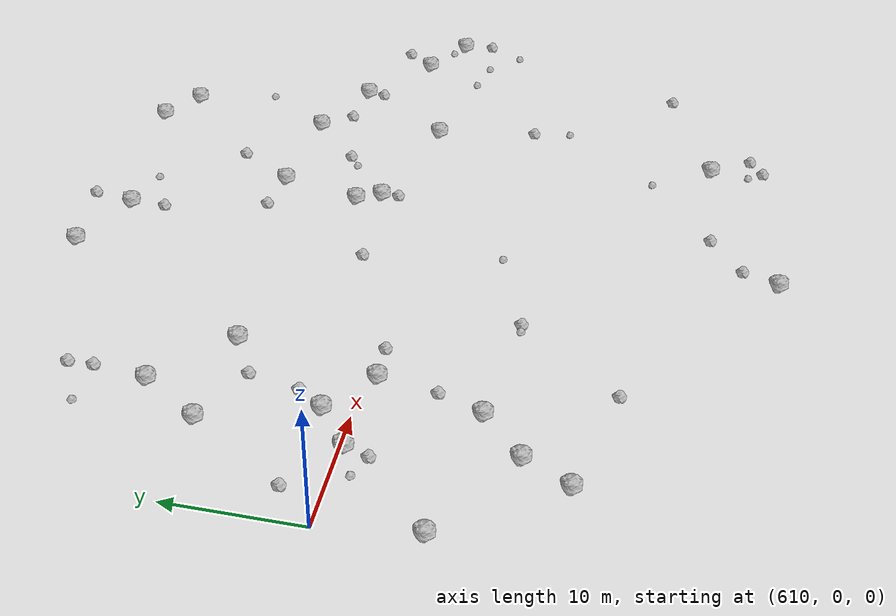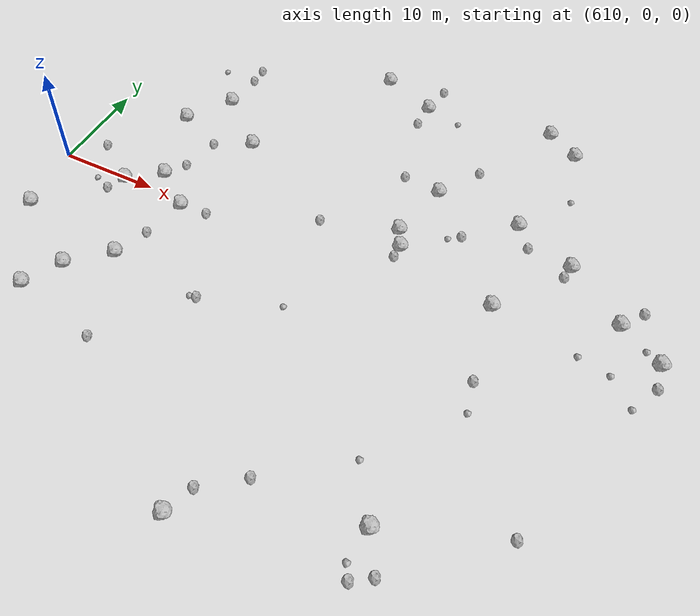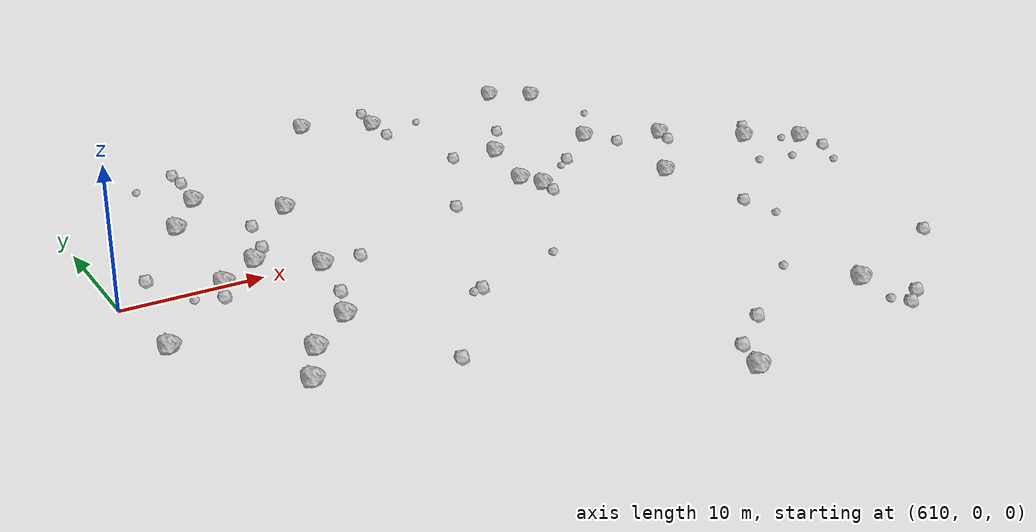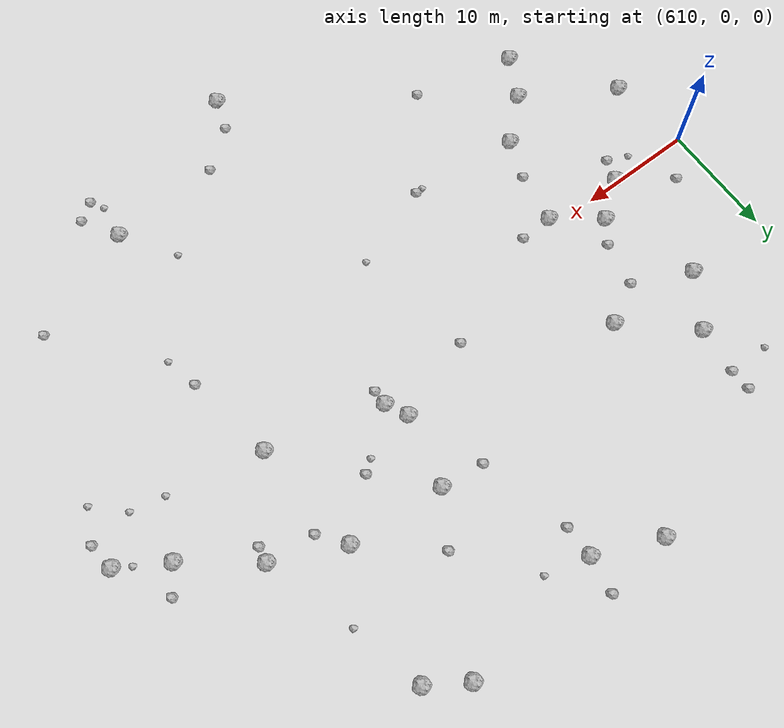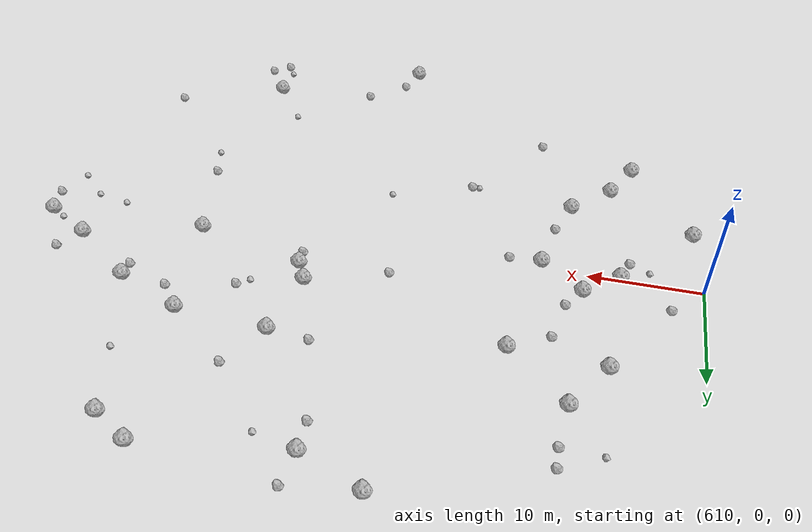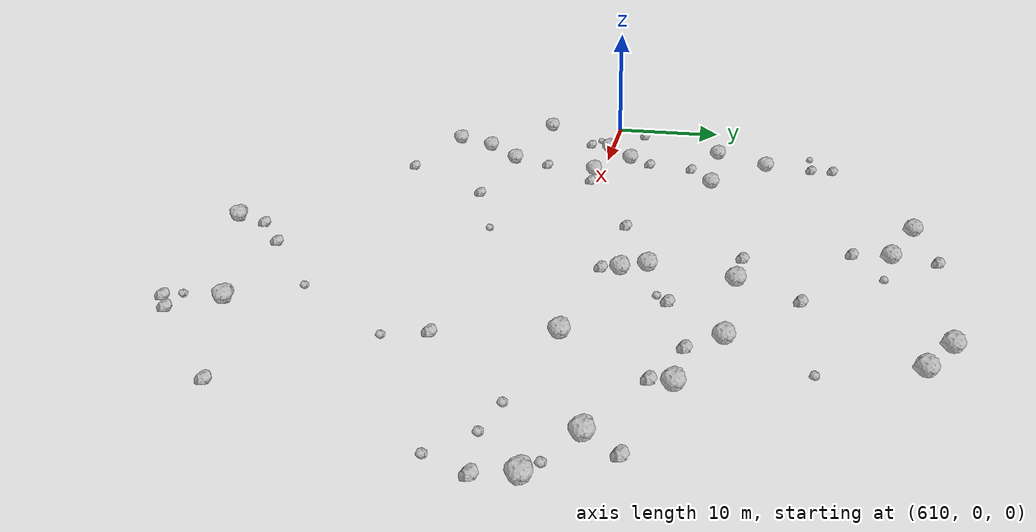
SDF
<sdf version="1.6">
 <world name="default">
  <include><uri>model://sun</uri></include>
  <model name="rock1_16_3">
   <include><uri>model://rock1</uri><pose>640.0315991823078 -27.36274846374219 0.5 0 0 0</pose></include>
  </model>
  <model name="rock1_16_4">
   <include><uri>model://rock1</uri><pose>634.2801211942387 25.61798237229602 0.5 0 0 0</pose></include>
  </model>
  <model name="rock1_16_5">
   <include><uri>model://rock1</uri><pose>620.2806205166614 2.131767723597754 0.5 0 0 0</pose></include>
  </model>
  <model name="rock1_16_6">
   <include><uri>model://rock1</uri><pose>622.0306611149961 -8.559806857280684 0.5 0 0 0</pose></include>
  </model>
  <model name="rock1_16_7">
   <include><uri>model://rock1</uri><pose>669.392696369012 2.031649609059741 0.5 0 0 0</pose></include>
  </model>
  <model name="rock1_16_8">
   <include><uri>model://rock1</uri><pose>653.8786931949367 11.509595995008624 0.5 0 0 0</pose></include>
  </model>
  <model name="rock1_16_9">
   <include><uri>model://rock1</uri><pose>639.8170053257465 23.252823942737976 0.5 0 0 0</pose></include>
  </model>
  <model name="rock1_16_10">
   <include><uri>model://rock1</uri><pose>645.526953181867 12.161562809479413 0.5 0 0 0</pose></include>
  </model>
  <model name="rock1_16_11">
   <include><uri>model://rock1</uri><pose>652.67242799756 25.167672545788363 0.5 0 0 0</pose></include>
  </model>
  <model name="rock1_16_12">
   <include><uri>model://rock1</uri><pose>644.0755211771288 5.924881515871775 0.5 0 0 0</pose></include>
  </model>
  <model name="rock1_16_13">
   <include><uri>model://rock1</uri><pose>620.5184382384422 14.66826246601427 0.5 0 0 0</pose></include>
  </model>
  <model name="rock1_16_14">
   <include><uri>model://rock1</uri><pose>618.5741977587948 -11.723732311168686 0.5 0 0 0</pose></include>
  </model>
  <model name="rock1_16_15">
   <include><uri>model://rock1</uri><pose>654.8649794786111 1.4333564175407751 0.5 0 0 0</pose></include>
  </model>
  <model name="rock1_16_16">
   <include><uri>model://rock1</uri><pose>665.3809921892864 4.482190067201799 0.5 0 0 0</pose></include>
  </model>
  <model name="rock1_16_17">
   <include><uri>model://rock1</uri><pose>659.7650850122759 8.816575273506572 0.5 0 0 0</pose></include>
  </model>
  <model name="rock1_16_18">
   <include><uri>model://rock1</uri><pose>610.9761529849643 -7.020465334474807 0.5 0 0 0</pose></include>
  </model>
  <model name="rock1_16_19">
   <include><uri>model://rock1</uri><pose>653.8958982045831 -21.44660676389403 0.5 0 0 0</pose></include>
  </model>
  <model name="rock1_16_20">
   <include><uri>model://rock1</uri><pose>644.9971561918692 4.050085963731803 0.5 0 0 0</pose></include>
  </model>
  <model name="rock1_16_21">
   <include><uri>model://rock1</uri><pose>625.8830520569919 9.831705163319349 0.5 0 0 0</pose></include>
  </model>
  <model name="rock1_16_22">
   <include><uri>model://rock1</uri><pose>655.8552088679395 23.101881955309864 0.5 0 0 0</pose></include>
  </model>
  <model name="rock1_16_23">
   <include><uri>model://rock1</uri><pose>617.6240116550347 10.24490834665869 0.5 0 0 0</pose></include>
  </model>
  <model name="rock1_16_24">
   <include><uri>model://rock1</uri><pose>624.0729414251883 -0.782004709781873 0.5 0 0 0</pose></include>
  </model>
  <model name="rock1_16_25">
   <include><uri>model://rock1</uri><pose>616.7373294980033 -15.25572691103214 0.5 0 0 0</pose></include>
  </model>
  <model name="rock1_16_26">
   <include><uri>model://rock1</uri><pose>617.1611308287488 -0.23601191457928294 0.5 0 0 0</pose></include>
  </model>
  <model name="rock2_16_0">
   <include><uri>model://rock2</uri><pose>621.58260751983 4.093763405989243 0.3 0 0 0</pose></include>
  </model>
  <model name="rock2_16_1">
   <include><uri>model://rock2</uri><pose>640.290618886585 26.462687420094603 0.3 0 0 0</pose></include>
  </model>
  <model name="rock2_16_2">
   <include><uri>model://rock2</uri><pose>631.4656326612999 -9.559662548153348 0.3 0 0 0</pose></include>
  </model>
  <model name="rock2_16_3">
   <include><uri>model://rock2</uri><pose>659.5149576735378 7.42284081943891 0.3 0 0 0</pose></include>
  </model>
  <model name="rock2_16_4">
   <include><uri>model://rock2</uri><pose>648.1501835216618 16.43173403156832 0.3 0 0 0</pose></include>
  </model>
  <model name="rock2_16_5">
   <include><uri>model://rock2</uri><pose>620.9043108164688 20.63189985126737 0.3 0 0 0</pose></include>
  </model>
  <model name="rock2_16_6">
   <include><uri>model://rock2</uri><pose>655.7572095477564 -24.544655948935183 0.3 0 0 0</pose></include>
  </model>
  <model name="rock2_16_7">
   <include><uri>model://rock2</uri><pose>654.2033063734106 -25.619619528610368 0.3 0 0 0</pose></include>
  </model>
  <model name="rock2_16_8">
   <include><uri>model://rock2</uri><pose>644.9712654884831 2.698647150116983 0.3 0 0 0</pose></include>
  </model>
  <model name="rock2_16_9">
   <include><uri>model://rock2</uri><pose>636.9203088721677 3.58237211068478 0.3 0 0 0</pose></include>
  </model>
  <model name="rock2_16_10">
   <include><uri>model://rock2</uri><pose>669.6746865552593 -0.3651503977989279 0.3 0 0 0</pose></include>
  </model>
  <model name="rock2_16_11">
   <include><uri>model://rock2</uri><pose>663.6583384987539 -17.493578266984255 0.3 0 0 0</pose></include>
  </model>
  <model name="rock2_16_12">
   <include><uri>model://rock2</uri><pose>626.8876872594375 -0.6684200533063063 0.3 0 0 0</pose></include>
  </model>
  <model name="rock2_16_13">
   <include><uri>model://rock2</uri><pose>649.5894399398474 7.7724980423613985 0.3 0 0 0</pose></include>
  </model>
  <model name="rock2_16_14">
   <include><uri>model://rock2</uri><pose>641.7638953820226 12.628967540177847 0.3 0 0 0</pose></include>
  </model>
  <model name="rock2_16_15">
   <include><uri>model://rock2</uri><pose>639.7462330660996 20.512197999337282 0.3 0 0 0</pose></include>
  </model>
  <model name="rock2_16_16">
   <include><uri>model://rock2</uri><pose>623.2253957319339 -5.226627952656596 0.3 0 0 0</pose></include>
  </model>
  <model name="rock2_16_17">
   <include><uri>model://rock2</uri><pose>616.4157481218703 -2.092350388975305 0.3 0 0 0</pose></include>
  </model>
  <model name="rock2_16_18">
   <include><uri>model://rock2</uri><pose>625.4947287229262 -17.277202742265416 0.3 0 0 0</pose></include>
  </model>
  <model name="rock2_16_19">
   <include><uri>model://rock2</uri><pose>644.3243494255723 -22.07485039471568 0.3 0 0 0</pose></include>
  </model>
  <model name="rock2_16_20">
   <include><uri>model://rock2</uri><pose>656.1638634400535 -6.496190689654998 0.3 0 0 0</pose></include>
  </model>
  <model name="rock2_16_21">
   <include><uri>model://rock2</uri><pose>640.9498397519192 -24.68549100467547 0.3 0 0 0</pose></include>
  </model>
  <model name="rock2_16_22">
   <include><uri>model://rock2</uri><pose>666.9233407243578 6.657158389977923 0.3 0 0 0</pose></include>
  </model>
  <model name="rock2_16_23">
   <include><uri>model://rock2</uri><pose>655.5614629121143 9.214190394361694 0.3 0 0 0</pose></include>
  </model>
  <model name="rock2_16_24">
   <include><uri>model://rock2</uri><pose>622.3946026003891 7.94454504237612 0.3 0 0 0</pose></include>
  </model>
  <model name="rock2_16_25">
   <include><uri>model://rock2</uri><pose>620.9461731640264 18.73863490094208 0.3 0 0 0</pose></include>
  </model>
  <model name="rock2_16_26">
   <include><uri>model://rock2</uri><pose>612.7879612446126 2.845070352782429 0.3 0 0 0</pose></include>
  </model>
  <model name="rock3_16_0">
   <include><uri>model://rock3</uri><pose>617.3969938938168 18.806527330395582 0.2 0 0 0</pose></include>
  </model>
  <model name="rock3_16_1">
   <include><uri>model://rock3</uri><pose>657.352810312853 16.712204839192935 0.2 0 0 0</pose></include>
  </model>
  <model name="rock3_16_2">
   <include><uri>model://rock3</uri><pose>665.937683835166 -0.8922241626114698 0.2 0 0 0</pose></include>
  </model>
  <model name="rock3_16_3">
   <include><uri>model://rock3</uri><pose>614.6252497041486 -1.3684261982626111 0.2 0 0 0</pose></include>
  </model>
  <model name="rock3_16_4">
   <include><uri>model://rock3</uri><pose>648.5170489227268 6.944311084099823 0.2 0 0 0</pose></include>
  </model>
  <model name="rock3_16_5">
   <include><uri>model://rock3</uri><pose>653.5256172942652 -24.528033127644658 0.2 0 0 0</pose></include>
  </model>
  <model name="rock3_16_6">
   <include><uri>model://rock3</uri><pose>656.7902220863492 -9.48020768527498 0.2 0 0 0</pose></include>
  </model>
  <model name="rock3_16_7">
   <include><uri>model://rock3</uri><pose>668.0019142388343 2.819233976331269 0.2 0 0 0</pose></include>
  </model>
  <model name="rock3_16_8">
   <include><uri>model://rock3</uri><pose>650.9305654959751 -17.006611952823874 0.2 0 0 0</pose></include>
  </model>
  <model name="rock3_16_9">
   <include><uri>model://rock3</uri><pose>638.7217675278249 -6.952164976954663 0.2 0 0 0</pose></include>
  </model>
  <model name="rock3_16_10">
   <include><uri>model://rock3</uri><pose>663.0107383484053 -0.27195566717090713 0.2 0 0 0</pose></include>
  </model>
  <model name="rock3_16_11">
   <include><uri>model://rock3</uri><pose>643.499942142088 22.293509214802384 0.2 0 0 0</pose></include>
  </model>
  <model name="rock3_16_12">
   <include><uri>model://rock3</uri><pose>668.2904535814889 -3.213916309089356 0.2 0 0 0</pose></include>
  </model>
  <model name="rock3_16_13">
   <include><uri>model://rock3</uri><pose>630.7738895567819 -9.653693601084711 0.2 0 0 0</pose></include>
  </model>
 </world>
</sdf>
